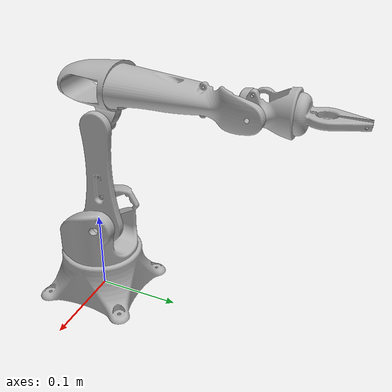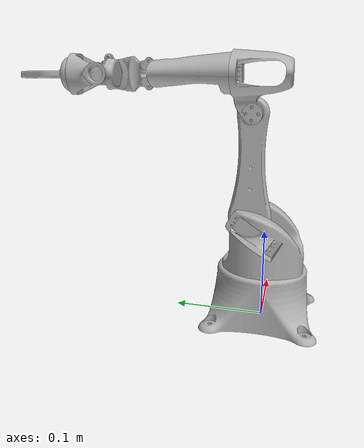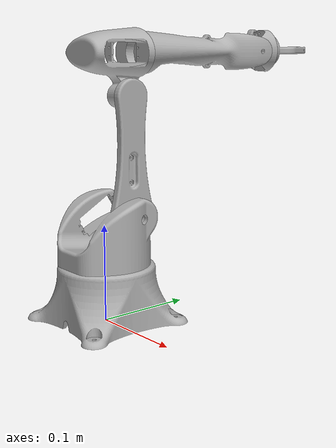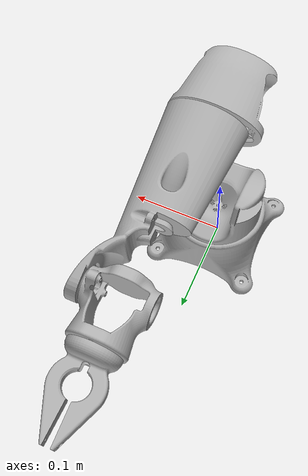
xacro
<?xml version="1.0" ?>
<robot name="corrado" xmlns:xacro="http://www.ros.org/wiki/xacro">

<xacro:include filename="$(find corrado_description)/urdf/materials.xacro" />
<xacro:include filename="$(find corrado_description)/urdf/corrado.trans" />
<xacro:include filename="$(find corrado_description)/urdf/corrado.gazebo" />

<link name="world"/>
<joint name="world_to_base_link=" type="fixed">
  <parent link="world"/>
  <child link="base_link"/>
</joint>

<link name="base_link">
  <inertial>
    <origin xyz="0.0005712035965292986 0.002149814167861342 0.028721711216282832" rpy="0 0 0"/>
    <mass value="0.25589656457744414"/>
    <inertia ixx="0.000371" iyy="0.000377" izz="0.000587" ixy="-0.0" iyz="-2e-06" ixz="-0.0"/>
  </inertial>
  <visual>
    <origin xyz="0 0 0" rpy="0 0 0"/>
    <geometry>
      <mesh filename="package://corrado_description/meshes/base_link.stl" scale="0.001 0.001 0.001"/>
    </geometry>
    <material name="silver"/>
  </visual>
  <collision>
    <origin xyz="0 0 0" rpy="0 0 0"/>
    <geometry>
      <mesh filename="package://corrado_description/meshes/base_link.stl" scale="0.001 0.001 0.001"/>
    </geometry>
  </collision>
</link>

<link name="link_2">
  <inertial>
    <origin xyz="-0.004874091051137862 -2.9551226064308822e-05 0.044966414454146716" rpy="0 0 0"/>
    <mass value="0.06723503488021657"/>
    <inertia ixx="0.000152" iyy="0.000146" izz="9e-06" ixy="0.0" iyz="0.0" ixz="3e-06"/>
  </inertial>
  <visual>
    <origin xyz="-0.025463 -0.019466 -0.110163" rpy="0 0 0"/>
    <geometry>
      <mesh filename="package://corrado_description/meshes/link_2.stl" scale="0.001 0.001 0.001"/>
    </geometry>
    <material name="silver"/>
  </visual>
  <collision>
    <origin xyz="-0.025463 -0.019466 -0.110163" rpy="0 0 0"/>
    <geometry>
      <mesh filename="package://corrado_description/meshes/link_2.stl" scale="0.001 0.001 0.001"/>
    </geometry>
  </collision>
</link>

<link name="link_3">
  <inertial>
    <origin xyz="-0.014136202472590852 -0.005878094538857825 0.03757703194506734" rpy="0 0 0"/>
    <mass value="0.07088669177132391"/>
    <inertia ixx="5.3e-05" iyy="4.1e-05" izz="4.2e-05" ixy="-1e-06" iyz="3e-06" ixz="2e-06"/>
  </inertial>
  <visual>
    <origin xyz="-0.013463 -0.019393 -0.230163" rpy="0 0 0"/>
    <geometry>
      <mesh filename="package://corrado_description/meshes/link_3.stl" scale="0.001 0.001 0.001"/>
    </geometry>
    <material name="silver"/>
  </visual>
  <collision>
    <origin xyz="-0.013463 -0.019393 -0.230163" rpy="0 0 0"/>
    <geometry>
      <mesh filename="package://corrado_description/meshes/link_3.stl" scale="0.001 0.001 0.001"/>
    </geometry>
  </collision>
</link>

<link name="link_4">
  <inertial>
    <origin xyz="0.003416086309992707 0.0582404461214805 0.0022445507342216398" rpy="0 0 0"/>
    <mass value="0.16607850247781106"/>
    <inertia ixx="0.000297" iyy="6.3e-05" izz="0.000334" ixy="-4.4e-05" iyz="8e-06" ixz="1e-06"/>
  </inertial>
  <visual>
    <origin xyz="-0.001141 -0.039318 -0.272789" rpy="0 0 0"/>
    <geometry>
      <mesh filename="package://corrado_description/meshes/link_4.stl" scale="0.001 0.001 0.001"/>
    </geometry>
    <material name="silver"/>
  </visual>
  <collision>
    <origin xyz="-0.001141 -0.039318 -0.272789" rpy="0 0 0"/>
    <geometry>
      <mesh filename="package://corrado_description/meshes/link_4.stl" scale="0.001 0.001 0.001"/>
    </geometry>
  </collision>
</link>

<link name="link_5">
  <inertial>
    <origin xyz="-0.024686331535258694 0.013554211028481727 5.171006341153639e-05" rpy="0 0 0"/>
    <mass value="0.033622009165911515"/>
    <inertia ixx="1.6e-05" iyy="1e-05" izz="1.9e-05" ixy="0.0" iyz="0.0" ixz="-0.0"/>
  </inertial>
  <visual>
    <origin xyz="-0.025224 -0.189468 -0.272789" rpy="0 0 0"/>
    <geometry>
      <mesh filename="package://corrado_description/meshes/link_5.stl" scale="0.001 0.001 0.001"/>
    </geometry>
    <material name="silver"/>
  </visual>
  <collision>
    <origin xyz="-0.025224 -0.189468 -0.272789" rpy="0 0 0"/>
    <geometry>
      <mesh filename="package://corrado_description/meshes/link_5.stl" scale="0.001 0.001 0.001"/>
    </geometry>
  </collision>
</link>

<link name="end_effector">
  <inertial>
    <origin xyz="-0.00011261190076495358 0.018819113943749716 1.3838233003937717e-07" rpy="0 0 0"/>
    <mass value="0.14259404167762188"/>
    <inertia ixx="5.3e-05" iyy="2.3e-05" izz="6e-05" ixy="0.0" iyz="-0.0" ixz="0.0"/>
  </inertial>
  <visual>
    <origin xyz="7e-06 -0.227315 -0.272789" rpy="0 0 0"/>
    <geometry>
      <mesh filename="package://corrado_description/meshes/end_effector.stl" scale="0.001 0.001 0.001"/>
    </geometry>
    <material name="silver"/>
  </visual>
  <collision>
    <origin xyz="7e-06 -0.227315 -0.272789" rpy="0 0 0"/>
    <geometry>
      <mesh filename="package://corrado_description/meshes/end_effector.stl" scale="0.001 0.001 0.001"/>
    </geometry>
  </collision>
</link>

<link name="link_1">
  <inertial>
    <origin xyz="0.0026809363659868832 -0.002961142036595421 0.025934894578316964" rpy="0 0 0"/>
    <mass value="0.21815052421722608"/>
    <inertia ixx="0.000176" iyy="0.000242" izz="0.000255" ixy="-4e-06" iyz="-4e-06" ixz="-1.5e-05"/>
  </inertial>
  <visual>
    <origin xyz="-0.000572 -0.00151 -0.05" rpy="0 0 0"/>
    <geometry>
      <mesh filename="package://corrado_description/meshes/link_1.stl" scale="0.001 0.001 0.001"/>
    </geometry>
    <material name="silver"/>
  </visual>
  <collision>
    <origin xyz="-0.000572 -0.00151 -0.05" rpy="0 0 0"/>
    <geometry>
      <mesh filename="package://corrado_description/meshes/link_1.stl" scale="0.001 0.001 0.001"/>
    </geometry>
  </collision>
</link>

<joint name="joint_2" type="revolute">
  <origin xyz="0.024891 0.017956 0.060163" rpy="0 0 0"/>
  <parent link="link_1"/>
  <child link="link_2"/>
  <axis xyz="-0.999981 -0.006108 0.0"/>
  <limit upper="1.570796" lower="-1.570796" effort="100" velocity="6.28"/>
</joint>

<joint name="joint_3" type="revolute">
  <origin xyz="-0.012 -7.3e-05 0.12" rpy="0 0 0"/>
  <parent link="link_2"/>
  <child link="link_3"/>
  <axis xyz="-0.999981 -0.006108 -0.0"/>
  <limit upper="1.570796" lower="-1.570796" effort="100" velocity="6.28"/>
</joint>

<joint name="joint_4" type="revolute">
  <origin xyz="-0.012322 0.019925 0.042626" rpy="0 0 0"/>
  <parent link="link_3"/>
  <child link="link_4"/>
  <axis xyz="-0.006108 0.999981 0.0"/>
  <limit upper="1.570796" lower="-1.570796" effort="100" velocity="6.28"/>
</joint>

<joint name="joint_5" type="revolute">
  <origin xyz="0.024083 0.15015 0.0" rpy="0 0 0"/>
  <parent link="link_4"/>
  <child link="link_5"/>
  <axis xyz="0.999981 0.006108 0.0"/>
  <limit upper="1.570796" lower="-1.570796" effort="100" velocity="6.28"/>
</joint>

<joint name="joint_6" type="revolute">
  <origin xyz="-0.025231 0.037847 0.0" rpy="0 0 0"/>
  <parent link="link_5"/>
  <child link="end_effector"/>
  <axis xyz="-0.006108 0.999981 0.0"/>
  <limit upper="1.570796" lower="-1.570796" effort="100" velocity="6.28"/>
</joint>

<joint name="joint_1" type="revolute">
  <origin xyz="0.000572 0.00151 0.05" rpy="0 0 0"/>
  <parent link="base_link"/>
  <child link="link_1"/>
  <axis xyz="-0.0 -0.0 1.0"/>
  <limit upper="1.570796" lower="-1.570796" effort="100" velocity="6.28"/>
</joint>

</robot>

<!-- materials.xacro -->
<robot name="corrado" xmlns:xacro="http://www.ros.org/wiki/xacro" >

<material name="silver">
  <color rgba="0.700 0.700 0.700 1.000"/>
</material>

</robot>

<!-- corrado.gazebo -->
<robot name="corrado" xmlns:xacro="http://www.ros.org/wiki/xacro" >

<xacro:property name="body_color" value="Gazebo/DarkGrey" />

<gazebo>
  <plugin name="gazebo_ros_control" filename="libgazebo_ros_control.so">
    <robotNamespace>/corrado</robotNamespace>
  </plugin>
</gazebo>

<gazebo reference="base_link">
  <material>${body_color}</material>
  <mu1>0.2</mu1>
  <mu2>0.2</mu2>
  <selfCollide>true</selfCollide>
  <gravity>true</gravity>
</gazebo>

<gazebo reference="link_2">
  <material>${body_color}</material>
  <mu1>0.2</mu1>
  <mu2>0.2</mu2>
  <selfCollide>true</selfCollide>
</gazebo>

<gazebo reference="link_3">
  <material>${body_color}</material>
  <mu1>0.2</mu1>
  <mu2>0.2</mu2>
  <selfCollide>true</selfCollide>
</gazebo>

<gazebo reference="link_4">
  <material>${body_color}</material>
  <mu1>0.2</mu1>
  <mu2>0.2</mu2>
  <selfCollide>true</selfCollide>
</gazebo>

<gazebo reference="link_5">
  <material>${body_color}</material>
  <mu1>0.2</mu1>
  <mu2>0.2</mu2>
  <selfCollide>true</selfCollide>
</gazebo>

<gazebo reference="end_effector">
  <material>${body_color}</material>
  <mu1>0.2</mu1>
  <mu2>0.2</mu2>
  <selfCollide>true</selfCollide>
</gazebo>

<gazebo reference="link_1">
  <material>${body_color}</material>
  <mu1>0.2</mu1>
  <mu2>0.2</mu2>
  <selfCollide>true</selfCollide>
</gazebo>

</robot>
